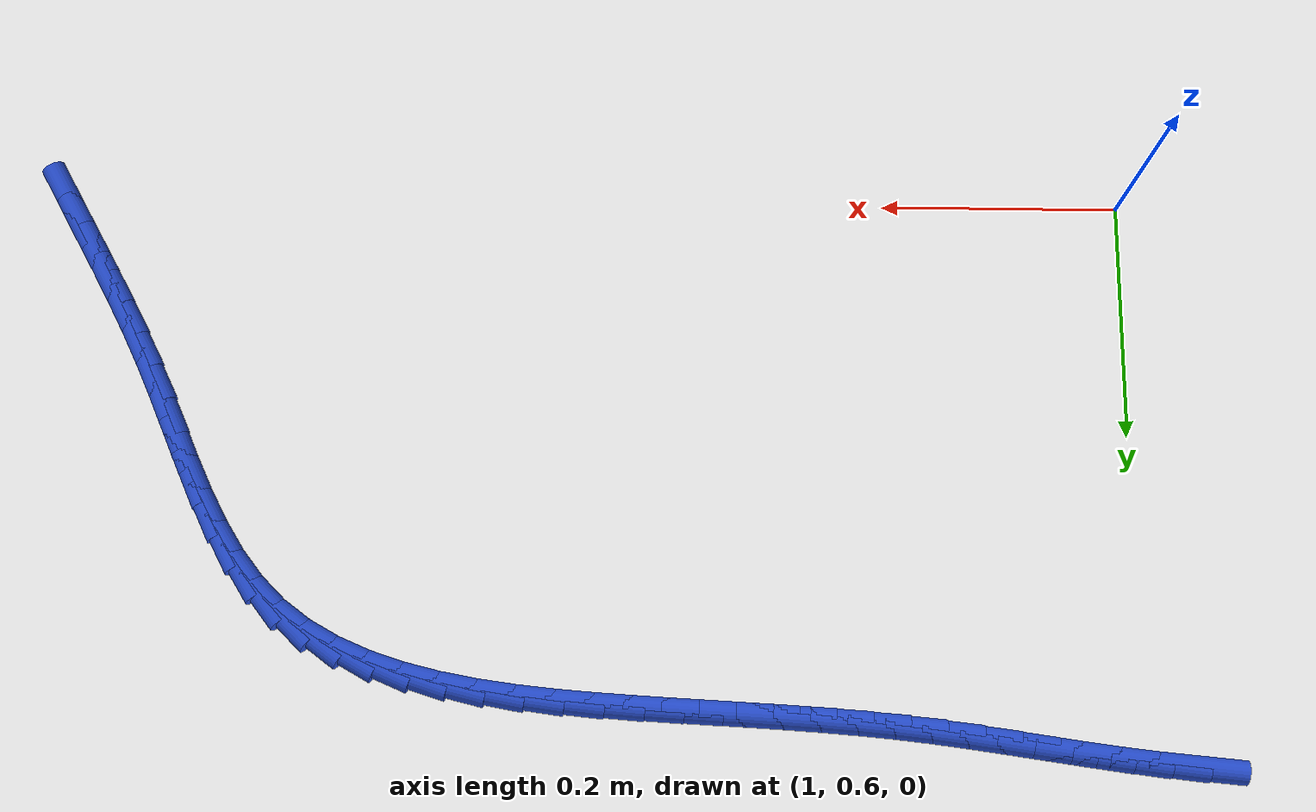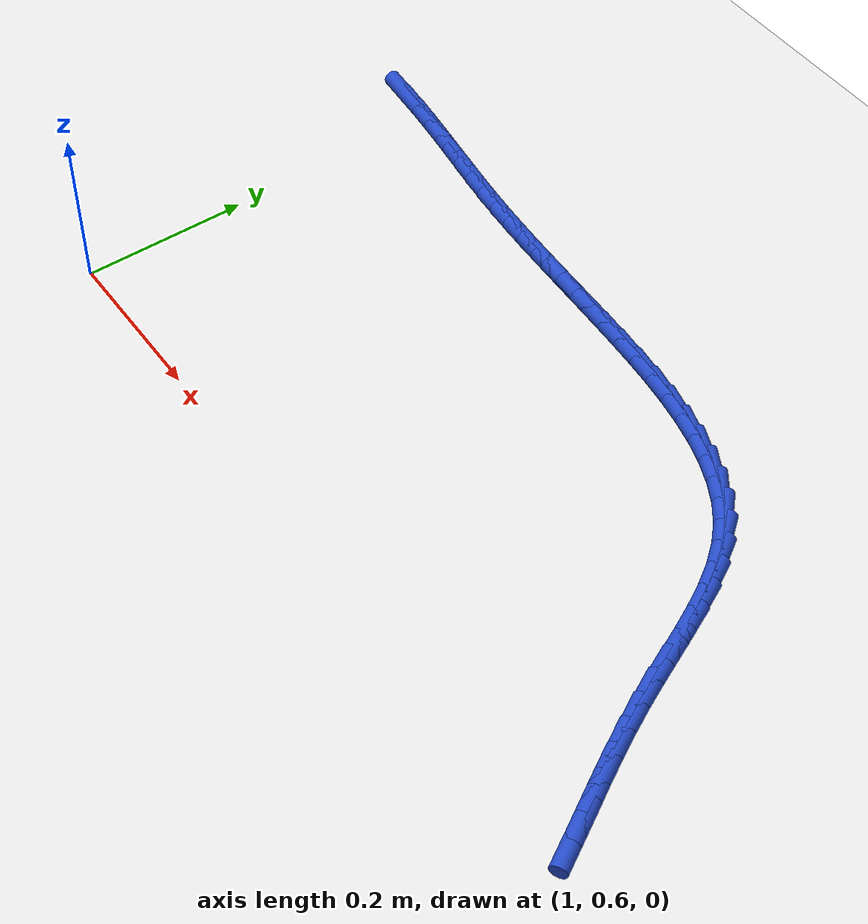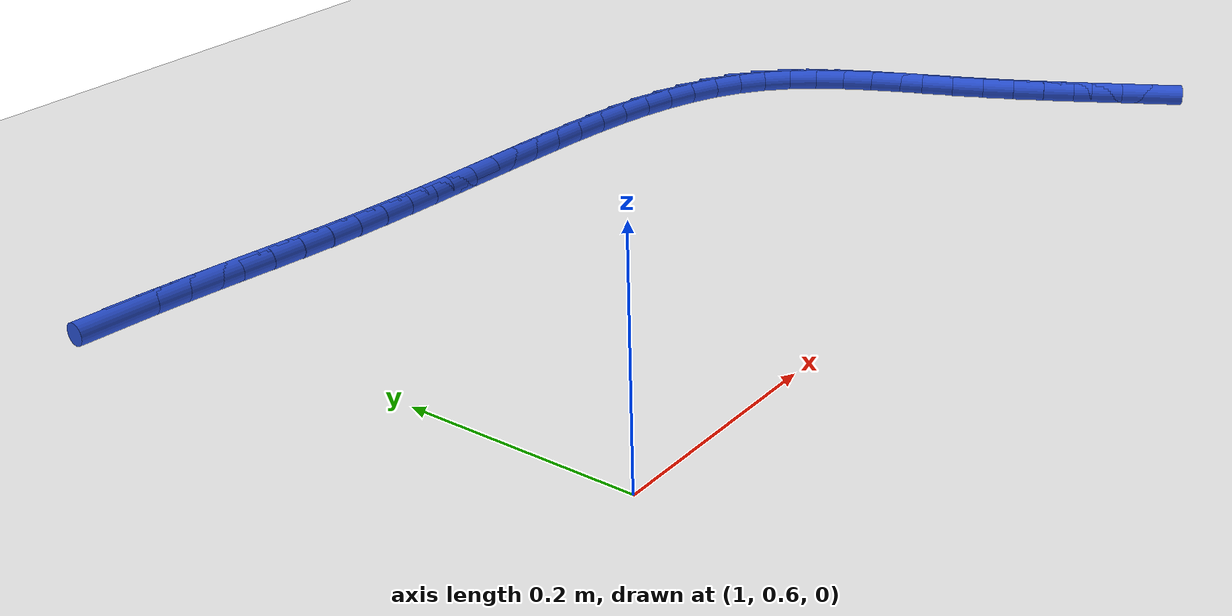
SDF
<sdf version="1.6">
 <world name="default">
  <model name="ground_plane">
   <static>1</static>
   <link name="link">
    <collision name="collision">
     <geometry><plane><normal>0 0 1</normal><size>100 100</size></plane></geometry>
     <surface><friction><ode><mu>100</mu><mu2>50</mu2></ode></friction></surface>
    </collision>
    <visual name="visual">
     <cast_shadows>0</cast_shadows>
     <geometry><plane><normal>0 0 1</normal><size>100 100</size></plane></geometry>
     <material>
      <script><uri>file://media/materials/scripts/gazebo.material</uri><name>Gazebo/WhiteGlow</name></script>
     </material>
    </visual>
   </link>
  </model>
  <model name="line">
   <link name="link_55">
    <pose>0.9604665279048199 1.072875158701408 0.01 0 1.57 -0.0901283257586979</pose>
    <collision name="collision">
     <geometry><cylinder><radius>0.01</radius><length>0.08</length></cylinder></geometry>
    </collision>
    <visual name="visual">
     <material>
      <script><name>Gazebo/Blue</name><uri>file://media/materials/scripts/gazebo.material</uri></script>
     </material>
     <geometry><cylinder><radius>0.01</radius><length>0.08</length></cylinder></geometry>
    </visual>
   </link>
   <link name="link_56">
    <pose>0.9901803632539473 1.0701898254384834 0.01 0 1.57 -0.11284641599848198</pose>
    <collision name="collision">
     <geometry><cylinder><radius>0.01</radius><length>0.08</length></cylinder></geometry>
    </collision>
    <visual name="visual">
     <material>
      <script><name>Gazebo/Blue</name><uri>file://media/materials/scripts/gazebo.material</uri></script>
     </material>
     <geometry><cylinder><radius>0.01</radius><length>0.08</length></cylinder></geometry>
    </visual>
   </link>
   <link name="link_57">
    <pose>1.0199314450110835 1.0668181985405505 0.01 0 1.57 -0.1288837378522241</pose>
    <collision name="collision">
     <geometry><cylinder><radius>0.01</radius><length>0.08</length></cylinder></geometry>
    </collision>
    <visual name="visual">
     <material>
      <script><name>Gazebo/Blue</name><uri>file://media/materials/scripts/gazebo.material</uri></script>
     </material>
     <geometry><cylinder><radius>0.01</radius><length>0.08</length></cylinder></geometry>
    </visual>
   </link>
   <link name="link_58">
    <pose>1.0496930922300678 1.0629610253227724 0.01 0 1.57 -0.13806977670635032</pose>
    <collision name="collision">
     <geometry><cylinder><radius>0.01</radius><length>0.08</length></cylinder></geometry>
    </collision>
    <visual name="visual">
     <material>
      <script><name>Gazebo/Blue</name><uri>file://media/materials/scripts/gazebo.material</uri></script>
     </material>
     <geometry><cylinder><radius>0.01</radius><length>0.08</length></cylinder></geometry>
    </visual>
   </link>
   <link name="link_59">
    <pose>1.0794367529070474 1.0588280284948115 0.01 0 1.57 -0.1404662769578571</pose>
    <collision name="collision">
     <geometry><cylinder><radius>0.01</radius><length>0.08</length></cylinder></geometry>
    </collision>
    <visual name="visual">
     <material>
      <script><name>Gazebo/Blue</name><uri>file://media/materials/scripts/gazebo.material</uri></script>
     </material>
     <geometry><cylinder><radius>0.01</radius><length>0.08</length></cylinder></geometry>
    </visual>
   </link>
   <link name="link_60">
    <pose>1.1091338750381663 1.0546289307663312 0.01 0 1.57 -0.13606153163756288</pose>
    <collision name="collision">
     <geometry><cylinder><radius>0.01</radius><length>0.08</length></cylinder></geometry>
    </collision>
    <visual name="visual">
     <material>
      <script><name>Gazebo/Blue</name><uri>file://media/materials/scripts/gazebo.material</uri></script>
     </material>
     <geometry><cylinder><radius>0.01</radius><length>0.08</length></cylinder></geometry>
    </visual>
   </link>
   <link name="link_61">
    <pose>1.138755906619571 1.0505734548469934 0.01 0 1.57 -0.12476634531597112</pose>
    <collision name="collision">
     <geometry><cylinder><radius>0.01</radius><length>0.08</length></cylinder></geometry>
    </collision>
    <visual name="visual">
     <material>
      <script><name>Gazebo/Blue</name><uri>file://media/materials/scripts/gazebo.material</uri></script>
     </material>
     <geometry><cylinder><radius>0.01</radius><length>0.08</length></cylinder></geometry>
    </visual>
   </link>
   <link name="link_62">
    <pose>1.168274295647406 1.046871323446461 0.01 0 1.57 -0.10677580669767478</pose>
    <collision name="collision">
     <geometry><cylinder><radius>0.01</radius><length>0.08</length></cylinder></geometry>
    </collision>
    <visual name="visual">
     <material>
      <script><name>Gazebo/Blue</name><uri>file://media/materials/scripts/gazebo.material</uri></script>
     </material>
     <geometry><cylinder><radius>0.01</radius><length>0.08</length></cylinder></geometry>
    </visual>
   </link>
   <link name="link_63">
    <pose>1.1976647748909204 1.0437211504226065 0.01 0 1.57 -0.08763884763996826</pose>
    <collision name="collision">
     <geometry><cylinder><radius>0.01</radius><length>0.08</length></cylinder></geometry>
    </collision>
    <visual name="visual">
     <material>
      <script><name>Gazebo/Blue</name><uri>file://media/materials/scripts/gazebo.material</uri></script>
     </material>
     <geometry><cylinder><radius>0.01</radius><length>0.08</length></cylinder></geometry>
    </visual>
   </link>
   <link name="link_64">
    <pose>1.2269707043828033 1.0411462168377648 0.01 0 1.57 -0.07205440197935882</pose>
    <collision name="collision">
     <geometry><cylinder><radius>0.01</radius><length>0.08</length></cylinder></geometry>
    </collision>
    <visual name="visual">
     <material>
      <script><name>Gazebo/Blue</name><uri>file://media/materials/scripts/gazebo.material</uri></script>
     </material>
     <geometry><cylinder><radius>0.01</radius><length>0.08</length></cylinder></geometry>
    </visual>
   </link>
   <link name="link_65">
    <pose>1.2562893618304896 1.0390300149152567 0.01 0 1.57 -0.06033624953602206</pose>
    <collision name="collision">
     <geometry><cylinder><radius>0.01</radius><length>0.08</length></cylinder></geometry>
    </collision>
    <visual name="visual">
     <material>
      <script><name>Gazebo/Blue</name><uri>file://media/materials/scripts/gazebo.material</uri></script>
     </material>
     <geometry><cylinder><radius>0.01</radius><length>0.08</length></cylinder></geometry>
    </visual>
   </link>
   <link name="link_66">
    <pose>1.285719523604906 1.0372521513913049 0.01 0 1.57 -0.05257953234264327</pose>
    <collision name="collision">
     <geometry><cylinder><radius>0.01</radius><length>0.08</length></cylinder></geometry>
    </collision>
    <visual name="visual">
     <material>
      <script><name>Gazebo/Blue</name><uri>file://media/materials/scripts/gazebo.material</uri></script>
     </material>
     <geometry><cylinder><radius>0.01</radius><length>0.08</length></cylinder></geometry>
    </visual>
   </link>
   <link name="link_67">
    <pose>1.3153599660769777 1.0356922330021314 0.01 0 1.57 -0.048788995937671456</pose>
    <collision name="collision">
     <geometry><cylinder><radius>0.01</radius><length>0.08</length></cylinder></geometry>
    </collision>
    <visual name="visual">
     <material>
      <script><name>Gazebo/Blue</name><uri>file://media/materials/scripts/gazebo.material</uri></script>
     </material>
     <geometry><cylinder><radius>0.01</radius><length>0.08</length></cylinder></geometry>
    </visual>
   </link>
   <link name="link_68">
    <pose>1.3453094656176328 1.0342298664839586 0.01 0 1.57 -0.04888521085392603</pose>
    <collision name="collision">
     <geometry><cylinder><radius>0.01</radius><length>0.08</length></cylinder></geometry>
    </collision>
    <visual name="visual">
     <material>
      <script><name>Gazebo/Blue</name><uri>file://media/materials/scripts/gazebo.material</uri></script>
     </material>
     <geometry><cylinder><radius>0.01</radius><length>0.08</length></cylinder></geometry>
    </visual>
   </link>
   <link name="link_69">
    <pose>1.3756667985977962 1.032744658573009 0.01 0 1.57 -0.052713096226284104</pose>
    <collision name="collision">
     <geometry><cylinder><radius>0.01</radius><length>0.08</length></cylinder></geometry>
    </collision>
    <visual name="visual">
     <material>
      <script><name>Gazebo/Blue</name><uri>file://media/materials/scripts/gazebo.material</uri></script>
     </material>
     <geometry><cylinder><radius>0.01</radius><length>0.08</length></cylinder></geometry>
    </visual>
   </link>
   <link name="link_70">
    <pose>1.4065307413883956 1.0311162160055047 0.01 0 1.57 -0.06043379353934972</pose>
    <collision name="collision">
     <geometry><cylinder><radius>0.01</radius><length>0.08</length></cylinder></geometry>
    </collision>
    <visual name="visual">
     <material>
      <script><name>Gazebo/Blue</name><uri>file://media/materials/scripts/gazebo.material</uri></script>
     </material>
     <geometry><cylinder><radius>0.01</radius><length>0.08</length></cylinder></geometry>
    </visual>
   </link>
   <link name="link_71">
    <pose>1.437972475279584 1.0292137561046764 0.01 0 1.57 -0.0754990093358888</pose>
    <collision name="collision">
     <geometry><cylinder><radius>0.01</radius><length>0.08</length></cylinder></geometry>
    </collision>
    <visual name="visual">
     <material>
      <script><name>Gazebo/Blue</name><uri>file://media/materials/scripts/gazebo.material</uri></script>
     </material>
     <geometry><cylinder><radius>0.01</radius><length>0.08</length></cylinder></geometry>
    </visual>
   </link>
   <link name="link_72">
    <pose>1.4697973985439439 1.0268064301871147 0.01 0 1.57 -0.10005571785896669</pose>
    <collision name="collision">
     <geometry><cylinder><radius>0.01</radius><length>0.08</length></cylinder></geometry>
    </collision>
    <visual name="visual">
     <material>
      <script><name>Gazebo/Blue</name><uri>file://media/materials/scripts/gazebo.material</uri></script>
     </material>
     <geometry><cylinder><radius>0.01</radius><length>0.08</length></cylinder></geometry>
    </visual>
   </link>
   <link name="link_73">
    <pose>1.501662391393634 1.0236074732458016 0.01 0 1.57 -0.1347276671439697</pose>
    <collision name="collision">
     <geometry><cylinder><radius>0.01</radius><length>0.08</length></cylinder></geometry>
    </collision>
    <visual name="visual">
     <material>
      <script><name>Gazebo/Blue</name><uri>file://media/materials/scripts/gazebo.material</uri></script>
     </material>
     <geometry><cylinder><radius>0.01</radius><length>0.08</length></cylinder></geometry>
    </visual>
   </link>
   <link name="link_74">
    <pose>1.5332227120671913 1.01932950960858 0.01 0 1.57 -0.18061064745511154</pose>
    <collision name="collision">
     <geometry><cylinder><radius>0.01</radius><length>0.08</length></cylinder></geometry>
    </collision>
    <visual name="visual">
     <material>
      <script><name>Gazebo/Blue</name><uri>file://media/materials/scripts/gazebo.material</uri></script>
     </material>
     <geometry><cylinder><radius>0.01</radius><length>0.08</length></cylinder></geometry>
    </visual>
   </link>
   <link name="link_75">
    <pose>1.564133618803152 1.013685163603293 0.01 0 1.57 -0.23927373358334778</pose>
    <collision name="collision">
     <geometry><cylinder><radius>0.01</radius><length>0.08</length></cylinder></geometry>
    </collision>
    <visual name="visual">
     <material>
      <script><name>Gazebo/Blue</name><uri>file://media/materials/scripts/gazebo.material</uri></script>
     </material>
     <geometry><cylinder><radius>0.01</radius><length>0.08</length></cylinder></geometry>
    </visual>
   </link>
   <link name="link_76">
    <pose>1.594050369840052 1.0063870595577842 0.01 0 1.57 -0.3126941003357962</pose>
    <collision name="collision">
     <geometry><cylinder><radius>0.01</radius><length>0.08</length></cylinder></geometry>
    </collision>
    <visual name="visual">
     <material>
      <script><name>Gazebo/Blue</name><uri>file://media/materials/scripts/gazebo.material</uri></script>
     </material>
     <geometry><cylinder><radius>0.01</radius><length>0.08</length></cylinder></geometry>
    </visual>
   </link>
   <link name="link_77">
    <pose>1.6226282234164275 0.9971478217998953 0.01 0 1.57 -0.4030575655947797</pose>
    <collision name="collision">
     <geometry><cylinder><radius>0.01</radius><length>0.08</length></cylinder></geometry>
    </collision>
    <visual name="visual">
     <material>
      <script><name>Gazebo/Blue</name><uri>file://media/materials/scripts/gazebo.material</uri></script>
     </material>
     <geometry><cylinder><radius>0.01</radius><length>0.08</length></cylinder></geometry>
    </visual>
   </link>
   <link name="link_78">
    <pose>1.6495224377708146 0.98568007465747 0.01 0 1.57 -0.5122856135916787</pose>
    <collision name="collision">
     <geometry><cylinder><radius>0.01</radius><length>0.08</length></cylinder></geometry>
    </collision>
    <visual name="visual">
     <material>
      <script><name>Gazebo/Blue</name><uri>file://media/materials/scripts/gazebo.material</uri></script>
     </material>
     <geometry><cylinder><radius>0.01</radius><length>0.08</length></cylinder></geometry>
    </visual>
   </link>
   <link name="link_79">
    <pose>1.6743882711417495 0.9716964424583511 0.01 0 1.57 -0.6411455471079802</pose>
    <collision name="collision">
     <geometry><cylinder><radius>0.01</radius><length>0.08</length></cylinder></geometry>
    </collision>
    <visual name="visual">
     <material>
      <script><name>Gazebo/Blue</name><uri>file://media/materials/scripts/gazebo.material</uri></script>
     </material>
     <geometry><cylinder><radius>0.01</radius><length>0.08</length></cylinder></geometry>
    </visual>
   </link>
   <link name="link_80">
    <pose>1.6968809817677677 0.9549095495303815 0.01 0 1.57 -0.7842504781069051</pose>
    <collision name="collision">
     <geometry><cylinder><radius>0.01</radius><length>0.08</length></cylinder></geometry>
    </collision>
    <visual name="visual">
     <material>
      <script><name>Gazebo/Blue</name><uri>file://media/materials/scripts/gazebo.material</uri></script>
     </material>
     <geometry><cylinder><radius>0.01</radius><length>0.08</length></cylinder></geometry>
    </visual>
   </link>
   <link name="link_81">
    <pose>1.716731723809908 0.9351043200833843 0.01 0 1.57 -0.9116583377124957</pose>
    <collision name="collision">
     <geometry><cylinder><radius>0.01</radius><length>0.08</length></cylinder></geometry>
    </collision>
    <visual name="visual">
     <material>
      <script><name>Gazebo/Blue</name><uri>file://media/materials/scripts/gazebo.material</uri></script>
     </material>
     <geometry><cylinder><radius>0.01</radius><length>0.08</length></cylinder></geometry>
    </visual>
   </link>
   <link name="link_82">
    <pose>1.7341944741877655 0.9125637291116554 0.01 0 1.57 -1.0104739490534205</pose>
    <collision name="collision">
     <geometry><cylinder><radius>0.01</radius><length>0.08</length></cylinder></geometry>
    </collision>
    <visual name="visual">
     <material>
      <script><name>Gazebo/Blue</name><uri>file://media/materials/scripts/gazebo.material</uri></script>
     </material>
     <geometry><cylinder><radius>0.01</radius><length>0.08</length></cylinder></geometry>
    </visual>
   </link>
   <link name="link_83">
    <pose>1.7497434217814998 0.8877805296612553 0.01 0 1.57 -1.08202722430898</pose>
    <collision name="collision">
     <geometry><cylinder><radius>0.01</radius><length>0.08</length></cylinder></geometry>
    </collision>
    <visual name="visual">
     <material>
      <script><name>Gazebo/Blue</name><uri>file://media/materials/scripts/gazebo.material</uri></script>
     </material>
     <geometry><cylinder><radius>0.01</radius><length>0.08</length></cylinder></geometry>
    </visual>
   </link>
   <link name="link_84">
    <pose>1.7638535251437035 0.8612482079826688 0.01 0 1.57 -1.1289071558538661</pose>
    <collision name="collision">
     <geometry><cylinder><radius>0.01</radius><length>0.08</length></cylinder></geometry>
    </collision>
    <visual name="visual">
     <material>
      <script><name>Gazebo/Blue</name><uri>file://media/materials/scripts/gazebo.material</uri></script>
     </material>
     <geometry><cylinder><radius>0.01</radius><length>0.08</length></cylinder></geometry>
    </visual>
   </link>
   <link name="link_85">
    <pose>1.7769997428269677 0.8334602503263789 0.01 0 1.57 -1.1534979817439517</pose>
    <collision name="collision">
     <geometry><cylinder><radius>0.01</radius><length>0.08</length></cylinder></geometry>
    </collision>
    <visual name="visual">
     <material>
      <script><name>Gazebo/Blue</name><uri>file://media/materials/scripts/gazebo.material</uri></script>
     </material>
     <geometry><cylinder><radius>0.01</radius><length>0.08</length></cylinder></geometry>
    </visual>
   </link>
   <link name="link_86">
    <pose>1.789657033383886 0.8049101429428707 0.01 0 1.57 -1.157363774851232</pose>
    <collision name="collision">
     <geometry><cylinder><radius>0.01</radius><length>0.08</length></cylinder></geometry>
    </collision>
    <visual name="visual">
     <material>
      <script><name>Gazebo/Blue</name><uri>file://media/materials/scripts/gazebo.material</uri></script>
     </material>
     <geometry><cylinder><radius>0.01</radius><length>0.08</length></cylinder></geometry>
    </visual>
   </link>
   <link name="link_87">
    <pose>1.8023003553670491 0.7760913720826274 0.01 0 1.57 -1.1410841822694233</pose>
    <collision name="collision">
     <geometry><cylinder><radius>0.01</radius><length>0.08</length></cylinder></geometry>
    </collision>
    <visual name="visual">
     <material>
      <script><name>Gazebo/Blue</name><uri>file://media/materials/scripts/gazebo.material</uri></script>
     </material>
     <geometry><cylinder><radius>0.01</radius><length>0.08</length></cylinder></geometry>
    </visual>
   </link>
   <link name="link_88">
    <pose>1.8154043177026546 0.7474971240753416 0.01 0 1.57 -1.1112473831382108</pose>
    <collision name="collision">
     <geometry><cylinder><radius>0.01</radius><length>0.08</length></cylinder></geometry>
    </collision>
    <visual name="visual">
     <material>
      <script><name>Gazebo/Blue</name><uri>file://media/materials/scripts/gazebo.material</uri></script>
     </material>
     <geometry><cylinder><radius>0.01</radius><length>0.08</length></cylinder></geometry>
    </visual>
   </link>
   <link name="link_89">
    <pose>1.8292726156515418 0.7194739699998606 0.01 0 1.57 -1.085657196833805</pose>
    <collision name="collision">
     <geometry><cylinder><radius>0.01</radius><length>0.08</length></cylinder></geometry>
    </collision>
    <visual name="visual">
     <material>
      <script><name>Gazebo/Blue</name><uri>file://media/materials/scripts/gazebo.material</uri></script>
     </material>
     <geometry><cylinder><radius>0.01</radius><length>0.08</length></cylinder></geometry>
    </visual>
   </link>
   <link name="link_90">
    <pose>1.8437631515905941 0.6919860654308562 0.01 0 1.57 -1.0673467141071746</pose>
    <collision name="collision">
     <geometry><cylinder><radius>0.01</radius><length>0.08</length></cylinder></geometry>
    </collision>
    <visual name="visual">
     <material>
      <script><name>Gazebo/Blue</name><uri>file://media/materials/scripts/gazebo.material</uri></script>
     </material>
     <geometry><cylinder><radius>0.01</radius><length>0.08</length></cylinder></geometry>
    </visual>
   </link>
   <link name="link_91">
    <pose>1.85866205950047 0.6649360006995624 0.01 0 1.57 -1.056439680106508</pose>
    <collision name="collision">
     <geometry><cylinder><radius>0.01</radius><length>0.08</length></cylinder></geometry>
    </collision>
    <visual name="visual">
     <material>
      <script><name>Gazebo/Blue</name><uri>file://media/materials/scripts/gazebo.material</uri></script>
     </material>
     <geometry><cylinder><radius>0.01</radius><length>0.08</length></cylinder></geometry>
    </visual>
   </link>
   <link name="link_92">
    <pose>1.873755473361831 0.6382263661372108 0.01 0 1.57 -1.0530676905498886</pose>
    <collision name="collision">
     <geometry><cylinder><radius>0.01</radius><length>0.08</length></cylinder></geometry>
    </collision>
    <visual name="visual">
     <material>
      <script><name>Gazebo/Blue</name><uri>file://media/materials/scripts/gazebo.material</uri></script>
     </material>
     <geometry><cylinder><radius>0.01</radius><length>0.08</length></cylinder></geometry>
    </visual>
   </link>
   <link name="link_93">
    <pose>1.8888295271553364 0.6117597520750354 0.01 0 1.57 -1.057389721237297</pose>
    <collision name="collision">
     <geometry><cylinder><radius>0.01</radius><length>0.08</length></cylinder></geometry>
    </collision>
    <visual name="visual">
     <material>
      <script><name>Gazebo/Blue</name><uri>file://media/materials/scripts/gazebo.material</uri></script>
     </material>
     <geometry><cylinder><radius>0.01</radius><length>0.08</length></cylinder></geometry>
    </visual>
   </link>
  </model>
 </world>
</sdf>
